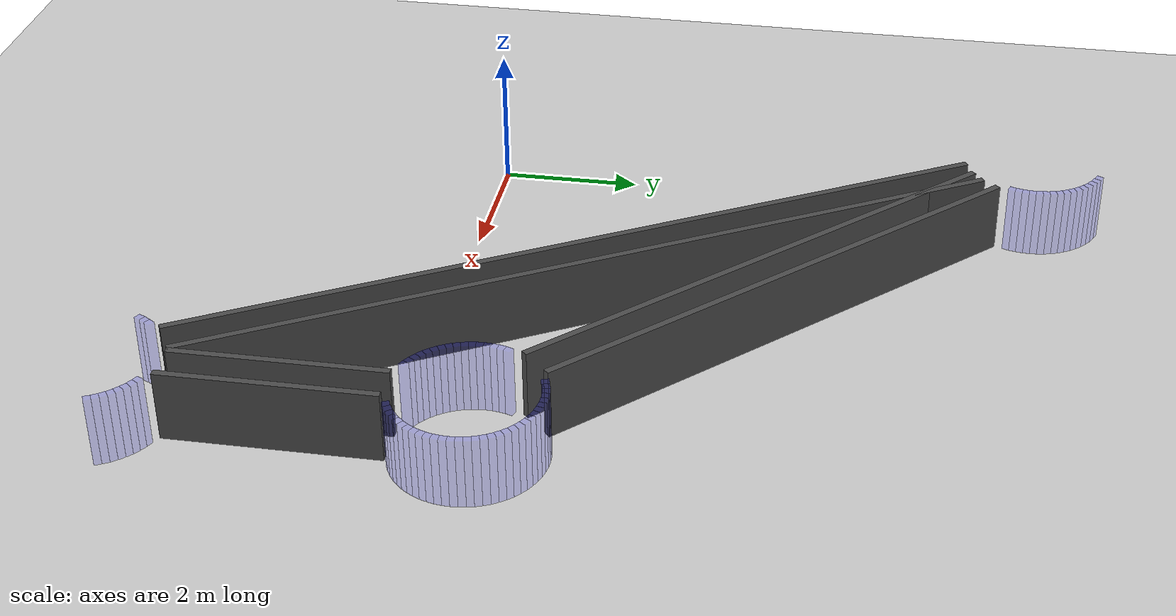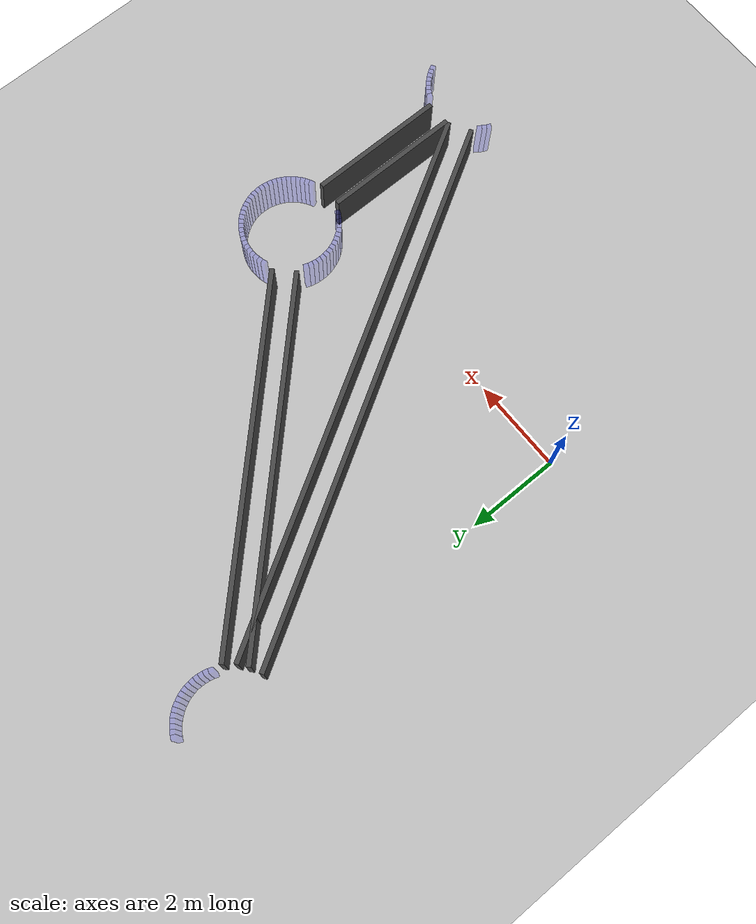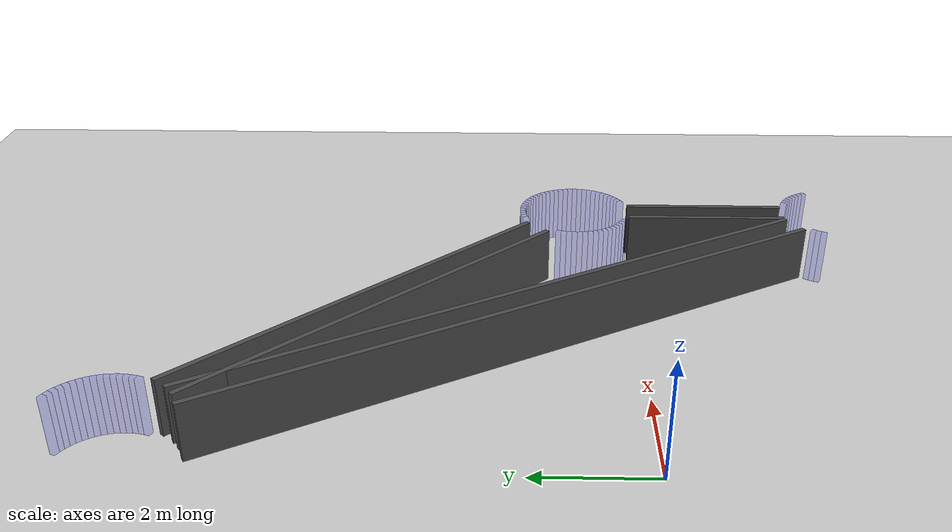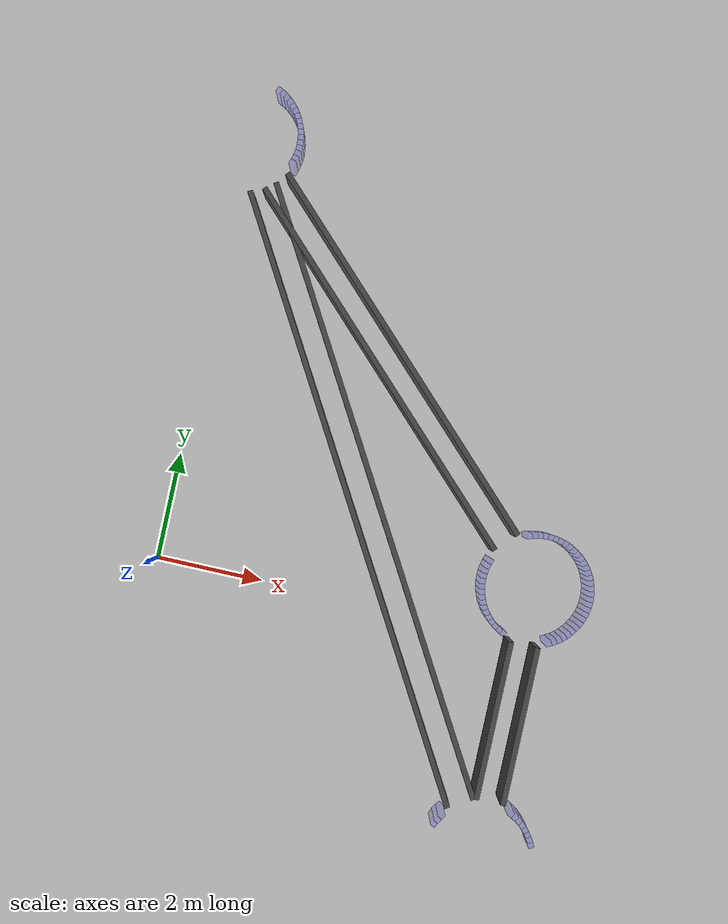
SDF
<sdf version="1.6">
 <world name="graph_routes">
  <include><uri>model://ground_plane</uri></include>
  <include><uri>model://sun</uri></include>
  <model name="node_B_seg36">
   <static>true</static>
   <pose>7.903989 -3.572445 0.500 0 0 2.012582793706</pose>
   <link name="link">
    <visual name="vis">
     <geometry><box><size>0.09817477042468103 0.1 1.0</size></box></geometry>
     <material>
      <ambient>0 0 1 0.05</ambient>
      <diffuse>0 0 1 0.05</diffuse>
      <specular>0.1 0.1 0.1 1</specular>
      <emissive>0 0 0 1</emissive>
     </material>
    </visual>
    <collision name="col"><geometry><box><size>0.09817477042468103 0.1 1.0</size></box></geometry></collision>
   </link>
  </model>
  <model name="node_B_seg37">
   <static>true</static>
   <pose>7.857729 -3.485897 0.500 0 0 2.110757564131</pose>
   <link name="link">
    <visual name="vis">
     <geometry><box><size>0.09817477042468103 0.1 1.0</size></box></geometry>
     <material>
      <ambient>0 0 1 0.05</ambient>
      <diffuse>0 0 1 0.05</diffuse>
      <specular>0.1 0.1 0.1 1</specular>
      <emissive>0 0 0 1</emissive>
     </material>
    </visual>
    <collision name="col"><geometry><box><size>0.09817477042468103 0.1 1.0</size></box></geometry></collision>
   </link>
  </model>
  <model name="node_B_seg38">
   <static>true</static>
   <pose>7.803208 -3.404301 0.500 0 0 2.208932334555</pose>
   <link name="link">
    <visual name="vis">
     <geometry><box><size>0.09817477042468103 0.1 1.0</size></box></geometry>
     <material>
      <ambient>0 0 1 0.05</ambient>
      <diffuse>0 0 1 0.05</diffuse>
      <specular>0.1 0.1 0.1 1</specular>
      <emissive>0 0 0 1</emissive>
     </material>
    </visual>
    <collision name="col"><geometry><box><size>0.09817477042468103 0.1 1.0</size></box></geometry></collision>
   </link>
  </model>
  <model name="node_B_seg39">
   <static>true</static>
   <pose>7.740951 -3.328441 0.500 0 0 2.307107104980</pose>
   <link name="link">
    <visual name="vis">
     <geometry><box><size>0.09817477042468103 0.1 1.0</size></box></geometry>
     <material>
      <ambient>0 0 1 0.05</ambient>
      <diffuse>0 0 1 0.05</diffuse>
      <specular>0.1 0.1 0.1 1</specular>
      <emissive>0 0 0 1</emissive>
     </material>
    </visual>
    <collision name="col"><geometry><box><size>0.09817477042468103 0.1 1.0</size></box></geometry></collision>
   </link>
  </model>
  <model name="node_B_seg40">
   <static>true</static>
   <pose>7.671559 -3.259049 0.500 0 0 2.405281875405</pose>
   <link name="link">
    <visual name="vis">
     <geometry><box><size>0.09817477042468103 0.1 1.0</size></box></geometry>
     <material>
      <ambient>0 0 1 0.05</ambient>
      <diffuse>0 0 1 0.05</diffuse>
      <specular>0.1 0.1 0.1 1</specular>
      <emissive>0 0 0 1</emissive>
     </material>
    </visual>
    <collision name="col"><geometry><box><size>0.09817477042468103 0.1 1.0</size></box></geometry></collision>
   </link>
  </model>
  <model name="node_B_seg41">
   <static>true</static>
   <pose>7.595699 -3.196792 0.500 0 0 2.503456645829</pose>
   <link name="link">
    <visual name="vis">
     <geometry><box><size>0.09817477042468103 0.1 1.0</size></box></geometry>
     <material>
      <ambient>0 0 1 0.05</ambient>
      <diffuse>0 0 1 0.05</diffuse>
      <specular>0.1 0.1 0.1 1</specular>
      <emissive>0 0 0 1</emissive>
     </material>
    </visual>
    <collision name="col"><geometry><box><size>0.09817477042468103 0.1 1.0</size></box></geometry></collision>
   </link>
  </model>
  <model name="node_B_seg42">
   <static>true</static>
   <pose>7.514103 -3.142271 0.500 0 0 2.601631416254</pose>
   <link name="link">
    <visual name="vis">
     <geometry><box><size>0.09817477042468103 0.1 1.0</size></box></geometry>
     <material>
      <ambient>0 0 1 0.05</ambient>
      <diffuse>0 0 1 0.05</diffuse>
      <specular>0.1 0.1 0.1 1</specular>
      <emissive>0 0 0 1</emissive>
     </material>
    </visual>
    <collision name="col"><geometry><box><size>0.09817477042468103 0.1 1.0</size></box></geometry></collision>
   </link>
  </model>
  <model name="node_B_seg43">
   <static>true</static>
   <pose>7.427555 -3.096011 0.500 0 0 2.699806186679</pose>
   <link name="link">
    <visual name="vis">
     <geometry><box><size>0.09817477042468103 0.1 1.0</size></box></geometry>
     <material>
      <ambient>0 0 1 0.05</ambient>
      <diffuse>0 0 1 0.05</diffuse>
      <specular>0.1 0.1 0.1 1</specular>
      <emissive>0 0 0 1</emissive>
     </material>
    </visual>
    <collision name="col"><geometry><box><size>0.09817477042468103 0.1 1.0</size></box></geometry></collision>
   </link>
  </model>
  <model name="node_B_seg57">
   <static>true</static>
   <pose>6.196792 -3.404301 0.500 0 0 4.074252972624</pose>
   <link name="link">
    <visual name="vis">
     <geometry><box><size>0.09817477042468103 0.1 1.0</size></box></geometry>
     <material>
      <ambient>0 0 1 0.05</ambient>
      <diffuse>0 0 1 0.05</diffuse>
      <specular>0.1 0.1 0.1 1</specular>
      <emissive>0 0 0 1</emissive>
     </material>
    </visual>
    <collision name="col"><geometry><box><size>0.09817477042468103 0.1 1.0</size></box></geometry></collision>
   </link>
  </model>
  <model name="node_B_seg58">
   <static>true</static>
   <pose>6.142271 -3.485897 0.500 0 0 4.172427743049</pose>
   <link name="link">
    <visual name="vis">
     <geometry><box><size>0.09817477042468103 0.1 1.0</size></box></geometry>
     <material>
      <ambient>0 0 1 0.05</ambient>
      <diffuse>0 0 1 0.05</diffuse>
      <specular>0.1 0.1 0.1 1</specular>
      <emissive>0 0 0 1</emissive>
     </material>
    </visual>
    <collision name="col"><geometry><box><size>0.09817477042468103 0.1 1.0</size></box></geometry></collision>
   </link>
  </model>
  <model name="node_B_seg59">
   <static>true</static>
   <pose>6.096011 -3.572445 0.500 0 0 4.270602513474</pose>
   <link name="link">
    <visual name="vis">
     <geometry><box><size>0.09817477042468103 0.1 1.0</size></box></geometry>
     <material>
      <ambient>0 0 1 0.05</ambient>
      <diffuse>0 0 1 0.05</diffuse>
      <specular>0.1 0.1 0.1 1</specular>
      <emissive>0 0 0 1</emissive>
     </material>
    </visual>
    <collision name="col"><geometry><box><size>0.09817477042468103 0.1 1.0</size></box></geometry></collision>
   </link>
  </model>
  <model name="node_D_seg0">
   <static>true</static>
   <pose>6.001205 0.950932 0.500 0 0 -1.521708941583</pose>
   <link name="link">
    <visual name="vis">
     <geometry><box><size>0.09817477042468103 0.1 1.0</size></box></geometry>
     <material>
      <ambient>0 0 1 0.05</ambient>
      <diffuse>0 0 1 0.05</diffuse>
      <specular>0.1 0.1 0.1 1</specular>
      <emissive>0 0 0 1</emissive>
     </material>
    </visual>
    <collision name="col"><geometry><box><size>0.09817477042468103 0.1 1.0</size></box></geometry></collision>
   </link>
  </model>
  <model name="node_D_seg1">
   <static>true</static>
   <pose>6.010823 0.853270 0.500 0 0 -1.423534171158</pose>
   <link name="link">
    <visual name="vis">
     <geometry><box><size>0.09817477042468103 0.1 1.0</size></box></geometry>
     <material>
      <ambient>0 0 1 0.05</ambient>
      <diffuse>0 0 1 0.05</diffuse>
      <specular>0.1 0.1 0.1 1</specular>
      <emissive>0 0 0 1</emissive>
     </material>
    </visual>
    <collision name="col"><geometry><box><size>0.09817477042468103 0.1 1.0</size></box></geometry></collision>
   </link>
  </model>
  <model name="node_D_seg2">
   <static>true</static>
   <pose>6.029969 0.757020 0.500 0 0 -1.325359400733</pose>
   <link name="link">
    <visual name="vis">
     <geometry><box><size>0.09817477042468103 0.1 1.0</size></box></geometry>
     <material>
      <ambient>0 0 1 0.05</ambient>
      <diffuse>0 0 1 0.05</diffuse>
      <specular>0.1 0.1 0.1 1</specular>
      <emissive>0 0 0 1</emissive>
     </material>
    </visual>
    <collision name="col"><geometry><box><size>0.09817477042468103 0.1 1.0</size></box></geometry></collision>
   </link>
  </model>
  <model name="node_D_seg3">
   <static>true</static>
   <pose>6.058456 0.663110 0.500 0 0 -1.227184630309</pose>
   <link name="link">
    <visual name="vis">
     <geometry><box><size>0.09817477042468103 0.1 1.0</size></box></geometry>
     <material>
      <ambient>0 0 1 0.05</ambient>
      <diffuse>0 0 1 0.05</diffuse>
      <specular>0.1 0.1 0.1 1</specular>
      <emissive>0 0 0 1</emissive>
     </material>
    </visual>
    <collision name="col"><geometry><box><size>0.09817477042468103 0.1 1.0</size></box></geometry></collision>
   </link>
  </model>
  <model name="node_D_seg4">
   <static>true</static>
   <pose>6.096011 0.572445 0.500 0 0 -1.129009859884</pose>
   <link name="link">
    <visual name="vis">
     <geometry><box><size>0.09817477042468103 0.1 1.0</size></box></geometry>
     <material>
      <ambient>0 0 1 0.05</ambient>
      <diffuse>0 0 1 0.05</diffuse>
      <specular>0.1 0.1 0.1 1</specular>
      <emissive>0 0 0 1</emissive>
     </material>
    </visual>
    <collision name="col"><geometry><box><size>0.09817477042468103 0.1 1.0</size></box></geometry></collision>
   </link>
  </model>
  <model name="node_D_seg5">
   <static>true</static>
   <pose>6.142271 0.485897 0.500 0 0 -1.030835089459</pose>
   <link name="link">
    <visual name="vis">
     <geometry><box><size>0.09817477042468103 0.1 1.0</size></box></geometry>
     <material>
      <ambient>0 0 1 0.05</ambient>
      <diffuse>0 0 1 0.05</diffuse>
      <specular>0.1 0.1 0.1 1</specular>
      <emissive>0 0 0 1</emissive>
     </material>
    </visual>
    <collision name="col"><geometry><box><size>0.09817477042468103 0.1 1.0</size></box></geometry></collision>
   </link>
  </model>
  <model name="node_D_seg6">
   <static>true</static>
   <pose>6.196792 0.404301 0.500 0 0 -0.932660319034</pose>
   <link name="link">
    <visual name="vis">
     <geometry><box><size>0.09817477042468103 0.1 1.0</size></box></geometry>
     <material>
      <ambient>0 0 1 0.05</ambient>
      <diffuse>0 0 1 0.05</diffuse>
      <specular>0.1 0.1 0.1 1</specular>
      <emissive>0 0 0 1</emissive>
     </material>
    </visual>
    <collision name="col"><geometry><box><size>0.09817477042468103 0.1 1.0</size></box></geometry></collision>
   </link>
  </model>
  <model name="node_D_seg7">
   <static>true</static>
   <pose>6.259049 0.328441 0.500 0 0 -0.834485548610</pose>
   <link name="link">
    <visual name="vis">
     <geometry><box><size>0.09817477042468103 0.1 1.0</size></box></geometry>
     <material>
      <ambient>0 0 1 0.05</ambient>
      <diffuse>0 0 1 0.05</diffuse>
      <specular>0.1 0.1 0.1 1</specular>
      <emissive>0 0 0 1</emissive>
     </material>
    </visual>
    <collision name="col"><geometry><box><size>0.09817477042468103 0.1 1.0</size></box></geometry></collision>
   </link>
  </model>
  <model name="node_D_seg8">
   <static>true</static>
   <pose>6.328441 0.259049 0.500 0 0 -0.736310778185</pose>
   <link name="link">
    <visual name="vis">
     <geometry><box><size>0.09817477042468103 0.1 1.0</size></box></geometry>
     <material>
      <ambient>0 0 1 0.05</ambient>
      <diffuse>0 0 1 0.05</diffuse>
      <specular>0.1 0.1 0.1 1</specular>
      <emissive>0 0 0 1</emissive>
     </material>
    </visual>
    <collision name="col"><geometry><box><size>0.09817477042468103 0.1 1.0</size></box></geometry></collision>
   </link>
  </model>
  <model name="node_D_seg9">
   <static>true</static>
   <pose>6.404301 0.196792 0.500 0 0 -0.638136007760</pose>
   <link name="link">
    <visual name="vis">
     <geometry><box><size>0.09817477042468103 0.1 1.0</size></box></geometry>
     <material>
      <ambient>0 0 1 0.05</ambient>
      <diffuse>0 0 1 0.05</diffuse>
      <specular>0.1 0.1 0.1 1</specular>
      <emissive>0 0 0 1</emissive>
     </material>
    </visual>
    <collision name="col"><geometry><box><size>0.09817477042468103 0.1 1.0</size></box></geometry></collision>
   </link>
  </model>
  <model name="node_D_seg10">
   <static>true</static>
   <pose>6.485897 0.142271 0.500 0 0 -0.539961237336</pose>
   <link name="link">
    <visual name="vis">
     <geometry><box><size>0.09817477042468103 0.1 1.0</size></box></geometry>
     <material>
      <ambient>0 0 1 0.05</ambient>
      <diffuse>0 0 1 0.05</diffuse>
      <specular>0.1 0.1 0.1 1</specular>
      <emissive>0 0 0 1</emissive>
     </material>
    </visual>
    <collision name="col"><geometry><box><size>0.09817477042468103 0.1 1.0</size></box></geometry></collision>
   </link>
  </model>
  <model name="node_D_seg11">
   <static>true</static>
   <pose>6.572445 0.096011 0.500 0 0 -0.441786466911</pose>
   <link name="link">
    <visual name="vis">
     <geometry><box><size>0.09817477042468103 0.1 1.0</size></box></geometry>
     <material>
      <ambient>0 0 1 0.05</ambient>
      <diffuse>0 0 1 0.05</diffuse>
      <specular>0.1 0.1 0.1 1</specular>
      <emissive>0 0 0 1</emissive>
     </material>
    </visual>
    <collision name="col"><geometry><box><size>0.09817477042468103 0.1 1.0</size></box></geometry></collision>
   </link>
  </model>
  <model name="node_D_seg20">
   <static>true</static>
   <pose>7.427555 0.096011 0.500 0 0 0.441786466911</pose>
   <link name="link">
    <visual name="vis">
     <geometry><box><size>0.09817477042468103 0.1 1.0</size></box></geometry>
     <material>
      <ambient>0 0 1 0.05</ambient>
      <diffuse>0 0 1 0.05</diffuse>
      <specular>0.1 0.1 0.1 1</specular>
      <emissive>0 0 0 1</emissive>
     </material>
    </visual>
    <collision name="col"><geometry><box><size>0.09817477042468103 0.1 1.0</size></box></geometry></collision>
   </link>
  </model>
  <model name="node_D_seg21">
   <static>true</static>
   <pose>7.514103 0.142271 0.500 0 0 0.539961237336</pose>
   <link name="link">
    <visual name="vis">
     <geometry><box><size>0.09817477042468103 0.1 1.0</size></box></geometry>
     <material>
      <ambient>0 0 1 0.05</ambient>
      <diffuse>0 0 1 0.05</diffuse>
      <specular>0.1 0.1 0.1 1</specular>
      <emissive>0 0 0 1</emissive>
     </material>
    </visual>
    <collision name="col"><geometry><box><size>0.09817477042468103 0.1 1.0</size></box></geometry></collision>
   </link>
  </model>
  <model name="node_D_seg22">
   <static>true</static>
   <pose>7.595699 0.196792 0.500 0 0 0.638136007760</pose>
   <link name="link">
    <visual name="vis">
     <geometry><box><size>0.09817477042468103 0.1 1.0</size></box></geometry>
     <material>
      <ambient>0 0 1 0.05</ambient>
      <diffuse>0 0 1 0.05</diffuse>
      <specular>0.1 0.1 0.1 1</specular>
      <emissive>0 0 0 1</emissive>
     </material>
    </visual>
    <collision name="col"><geometry><box><size>0.09817477042468103 0.1 1.0</size></box></geometry></collision>
   </link>
  </model>
  <model name="node_D_seg23">
   <static>true</static>
   <pose>7.671559 0.259049 0.500 0 0 0.736310778185</pose>
   <link name="link">
    <visual name="vis">
     <geometry><box><size>0.09817477042468103 0.1 1.0</size></box></geometry>
     <material>
      <ambient>0 0 1 0.05</ambient>
      <diffuse>0 0 1 0.05</diffuse>
      <specular>0.1 0.1 0.1 1</specular>
      <emissive>0 0 0 1</emissive>
     </material>
    </visual>
    <collision name="col"><geometry><box><size>0.09817477042468103 0.1 1.0</size></box></geometry></collision>
   </link>
  </model>
  <model name="node_D_seg24">
   <static>true</static>
   <pose>7.740951 0.328441 0.500 0 0 0.834485548610</pose>
   <link name="link">
    <visual name="vis">
     <geometry><box><size>0.09817477042468103 0.1 1.0</size></box></geometry>
     <material>
      <ambient>0 0 1 0.05</ambient>
      <diffuse>0 0 1 0.05</diffuse>
      <specular>0.1 0.1 0.1 1</specular>
      <emissive>0 0 0 1</emissive>
     </material>
    </visual>
    <collision name="col"><geometry><box><size>0.09817477042468103 0.1 1.0</size></box></geometry></collision>
   </link>
  </model>
  <model name="node_D_seg25">
   <static>true</static>
   <pose>7.803208 0.404301 0.500 0 0 0.932660319034</pose>
   <link name="link">
    <visual name="vis">
     <geometry><box><size>0.09817477042468103 0.1 1.0</size></box></geometry>
     <material>
      <ambient>0 0 1 0.05</ambient>
      <diffuse>0 0 1 0.05</diffuse>
      <specular>0.1 0.1 0.1 1</specular>
      <emissive>0 0 0 1</emissive>
     </material>
    </visual>
    <collision name="col"><geometry><box><size>0.09817477042468103 0.1 1.0</size></box></geometry></collision>
   </link>
  </model>
  <model name="node_D_seg26">
   <static>true</static>
   <pose>7.857729 0.485897 0.500 0 0 1.030835089459</pose>
   <link name="link">
    <visual name="vis">
     <geometry><box><size>0.09817477042468103 0.1 1.0</size></box></geometry>
     <material>
      <ambient>0 0 1 0.05</ambient>
      <diffuse>0 0 1 0.05</diffuse>
      <specular>0.1 0.1 0.1 1</specular>
      <emissive>0 0 0 1</emissive>
     </material>
    </visual>
    <collision name="col"><geometry><box><size>0.09817477042468103 0.1 1.0</size></box></geometry></collision>
   </link>
  </model>
  <model name="node_D_seg27">
   <static>true</static>
   <pose>7.903989 0.572445 0.500 0 0 1.129009859884</pose>
   <link name="link">
    <visual name="vis">
     <geometry><box><size>0.09817477042468103 0.1 1.0</size></box></geometry>
     <material>
      <ambient>0 0 1 0.05</ambient>
      <diffuse>0 0 1 0.05</diffuse>
      <specular>0.1 0.1 0.1 1</specular>
      <emissive>0 0 0 1</emissive>
     </material>
    </visual>
    <collision name="col"><geometry><box><size>0.09817477042468103 0.1 1.0</size></box></geometry></collision>
   </link>
  </model>
  <model name="node_D_seg28">
   <static>true</static>
   <pose>7.941544 0.663110 0.500 0 0 1.227184630309</pose>
   <link name="link">
    <visual name="vis">
     <geometry><box><size>0.09817477042468103 0.1 1.0</size></box></geometry>
     <material>
      <ambient>0 0 1 0.05</ambient>
      <diffuse>0 0 1 0.05</diffuse>
      <specular>0.1 0.1 0.1 1</specular>
      <emissive>0 0 0 1</emissive>
     </material>
    </visual>
    <collision name="col"><geometry><box><size>0.09817477042468103 0.1 1.0</size></box></geometry></collision>
   </link>
  </model>
  <model name="node_D_seg29">
   <static>true</static>
   <pose>7.970031 0.757020 0.500 0 0 1.325359400733</pose>
   <link name="link">
    <visual name="vis">
     <geometry><box><size>0.09817477042468103 0.1 1.0</size></box></geometry>
     <material>
      <ambient>0 0 1 0.05</ambient>
      <diffuse>0 0 1 0.05</diffuse>
      <specular>0.1 0.1 0.1 1</specular>
      <emissive>0 0 0 1</emissive>
     </material>
    </visual>
    <collision name="col"><geometry><box><size>0.09817477042468103 0.1 1.0</size></box></geometry></collision>
   </link>
  </model>
  <model name="node_D_seg30">
   <static>true</static>
   <pose>7.989177 0.853270 0.500 0 0 1.423534171158</pose>
   <link name="link">
    <visual name="vis">
     <geometry><box><size>0.09817477042468103 0.1 1.0</size></box></geometry>
     <material>
      <ambient>0 0 1 0.05</ambient>
      <diffuse>0 0 1 0.05</diffuse>
      <specular>0.1 0.1 0.1 1</specular>
      <emissive>0 0 0 1</emissive>
     </material>
    </visual>
    <collision name="col"><geometry><box><size>0.09817477042468103 0.1 1.0</size></box></geometry></collision>
   </link>
  </model>
  <model name="node_D_seg31">
   <static>true</static>
   <pose>7.998795 0.950932 0.500 0 0 1.521708941583</pose>
   <link name="link">
    <visual name="vis">
     <geometry><box><size>0.09817477042468103 0.1 1.0</size></box></geometry>
     <material>
      <ambient>0 0 1 0.05</ambient>
      <diffuse>0 0 1 0.05</diffuse>
      <specular>0.1 0.1 0.1 1</specular>
      <emissive>0 0 0 1</emissive>
     </material>
    </visual>
    <collision name="col"><geometry><box><size>0.09817477042468103 0.1 1.0</size></box></geometry></collision>
   </link>
  </model>
  <model name="node_D_seg32">
   <static>true</static>
   <pose>7.998795 1.049068 0.500 0 0 1.619883712007</pose>
   <link name="link">
    <visual name="vis">
     <geometry><box><size>0.09817477042468103 0.1 1.0</size></box></geometry>
     <material>
      <ambient>0 0 1 0.05</ambient>
      <diffuse>0 0 1 0.05</diffuse>
      <specular>0.1 0.1 0.1 1</specular>
      <emissive>0 0 0 1</emissive>
     </material>
    </visual>
    <collision name="col"><geometry><box><size>0.09817477042468103 0.1 1.0</size></box></geometry></collision>
   </link>
  </model>
  <model name="node_D_seg33">
   <static>true</static>
   <pose>7.989177 1.146730 0.500 0 0 1.718058482432</pose>
   <link name="link">
    <visual name="vis">
     <geometry><box><size>0.09817477042468103 0.1 1.0</size></box></geometry>
     <material>
      <ambient>0 0 1 0.05</ambient>
      <diffuse>0 0 1 0.05</diffuse>
      <specular>0.1 0.1 0.1 1</specular>
      <emissive>0 0 0 1</emissive>
     </material>
    </visual>
    <collision name="col"><geometry><box><size>0.09817477042468103 0.1 1.0</size></box></geometry></collision>
   </link>
  </model>
  <model name="node_D_seg34">
   <static>true</static>
   <pose>7.970031 1.242980 0.500 0 0 1.816233252857</pose>
   <link name="link">
    <visual name="vis">
     <geometry><box><size>0.09817477042468103 0.1 1.0</size></box></geometry>
     <material>
      <ambient>0 0 1 0.05</ambient>
      <diffuse>0 0 1 0.05</diffuse>
      <specular>0.1 0.1 0.1 1</specular>
      <emissive>0 0 0 1</emissive>
     </material>
    </visual>
    <collision name="col"><geometry><box><size>0.09817477042468103 0.1 1.0</size></box></geometry></collision>
   </link>
  </model>
  <model name="node_D_seg35">
   <static>true</static>
   <pose>7.941544 1.336890 0.500 0 0 1.914408023281</pose>
   <link name="link">
    <visual name="vis">
     <geometry><box><size>0.09817477042468103 0.1 1.0</size></box></geometry>
     <material>
      <ambient>0 0 1 0.05</ambient>
      <diffuse>0 0 1 0.05</diffuse>
      <specular>0.1 0.1 0.1 1</specular>
      <emissive>0 0 0 1</emissive>
     </material>
    </visual>
    <collision name="col"><geometry><box><size>0.09817477042468103 0.1 1.0</size></box></geometry></collision>
   </link>
  </model>
  <model name="node_D_seg36">
   <static>true</static>
   <pose>7.903989 1.427555 0.500 0 0 2.012582793706</pose>
   <link name="link">
    <visual name="vis">
     <geometry><box><size>0.09817477042468103 0.1 1.0</size></box></geometry>
     <material>
      <ambient>0 0 1 0.05</ambient>
      <diffuse>0 0 1 0.05</diffuse>
      <specular>0.1 0.1 0.1 1</specular>
      <emissive>0 0 0 1</emissive>
     </material>
    </visual>
    <collision name="col"><geometry><box><size>0.09817477042468103 0.1 1.0</size></box></geometry></collision>
   </link>
  </model>
  <model name="node_D_seg37">
   <static>true</static>
   <pose>7.857729 1.514103 0.500 0 0 2.110757564131</pose>
   <link name="link">
    <visual name="vis">
     <geometry><box><size>0.09817477042468103 0.1 1.0</size></box></geometry>
     <material>
      <ambient>0 0 1 0.05</ambient>
      <diffuse>0 0 1 0.05</diffuse>
      <specular>0.1 0.1 0.1 1</specular>
      <emissive>0 0 0 1</emissive>
     </material>
    </visual>
    <collision name="col"><geometry><box><size>0.09817477042468103 0.1 1.0</size></box></geometry></collision>
   </link>
  </model>
  <model name="node_D_seg38">
   <static>true</static>
   <pose>7.803208 1.595699 0.500 0 0 2.208932334555</pose>
   <link name="link">
    <visual name="vis">
     <geometry><box><size>0.09817477042468103 0.1 1.0</size></box></geometry>
     <material>
      <ambient>0 0 1 0.05</ambient>
      <diffuse>0 0 1 0.05</diffuse>
      <specular>0.1 0.1 0.1 1</specular>
      <emissive>0 0 0 1</emissive>
     </material>
    </visual>
    <collision name="col"><geometry><box><size>0.09817477042468103 0.1 1.0</size></box></geometry></collision>
   </link>
  </model>
  <model name="node_D_seg39">
   <static>true</static>
   <pose>7.740951 1.671559 0.500 0 0 2.307107104980</pose>
   <link name="link">
    <visual name="vis">
     <geometry><box><size>0.09817477042468103 0.1 1.0</size></box></geometry>
     <material>
      <ambient>0 0 1 0.05</ambient>
      <diffuse>0 0 1 0.05</diffuse>
      <specular>0.1 0.1 0.1 1</specular>
      <emissive>0 0 0 1</emissive>
     </material>
    </visual>
    <collision name="col"><geometry><box><size>0.09817477042468103 0.1 1.0</size></box></geometry></collision>
   </link>
  </model>
  <model name="node_D_seg40">
   <static>true</static>
   <pose>7.671559 1.740951 0.500 0 0 2.405281875405</pose>
   <link name="link">
    <visual name="vis">
     <geometry><box><size>0.09817477042468103 0.1 1.0</size></box></geometry>
     <material>
      <ambient>0 0 1 0.05</ambient>
      <diffuse>0 0 1 0.05</diffuse>
      <specular>0.1 0.1 0.1 1</specular>
      <emissive>0 0 0 1</emissive>
     </material>
    </visual>
    <collision name="col"><geometry><box><size>0.09817477042468103 0.1 1.0</size></box></geometry></collision>
   </link>
  </model>
  <model name="node_D_seg41">
   <static>true</static>
   <pose>7.595699 1.803208 0.500 0 0 2.503456645829</pose>
   <link name="link">
    <visual name="vis">
     <geometry><box><size>0.09817477042468103 0.1 1.0</size></box></geometry>
     <material>
      <ambient>0 0 1 0.05</ambient>
      <diffuse>0 0 1 0.05</diffuse>
      <specular>0.1 0.1 0.1 1</specular>
      <emissive>0 0 0 1</emissive>
     </material>
    </visual>
    <collision name="col"><geometry><box><size>0.09817477042468103 0.1 1.0</size></box></geometry></collision>
   </link>
  </model>
  <model name="node_D_seg42">
   <static>true</static>
   <pose>7.514103 1.857729 0.500 0 0 2.601631416254</pose>
   <link name="link">
    <visual name="vis">
     <geometry><box><size>0.09817477042468103 0.1 1.0</size></box></geometry>
     <material>
      <ambient>0 0 1 0.05</ambient>
      <diffuse>0 0 1 0.05</diffuse>
      <specular>0.1 0.1 0.1 1</specular>
      <emissive>0 0 0 1</emissive>
     </material>
    </visual>
    <collision name="col"><geometry><box><size>0.09817477042468103 0.1 1.0</size></box></geometry></collision>
   </link>
  </model>
  <model name="node_D_seg43">
   <static>true</static>
   <pose>7.427555 1.903989 0.500 0 0 2.699806186679</pose>
   <link name="link">
    <visual name="vis">
     <geometry><box><size>0.09817477042468103 0.1 1.0</size></box></geometry>
     <material>
      <ambient>0 0 1 0.05</ambient>
      <diffuse>0 0 1 0.05</diffuse>
      <specular>0.1 0.1 0.1 1</specular>
      <emissive>0 0 0 1</emissive>
     </material>
    </visual>
    <collision name="col"><geometry><box><size>0.09817477042468103 0.1 1.0</size></box></geometry></collision>
   </link>
  </model>
  <model name="node_D_seg44">
   <static>true</static>
   <pose>7.336890 1.941544 0.500 0 0 2.797980957103</pose>
   <link name="link">
    <visual name="vis">
     <geometry><box><size>0.09817477042468103 0.1 1.0</size></box></geometry>
     <material>
      <ambient>0 0 1 0.05</ambient>
      <diffuse>0 0 1 0.05</diffuse>
      <specular>0.1 0.1 0.1 1</specular>
      <emissive>0 0 0 1</emissive>
     </material>
    </visual>
    <collision name="col"><geometry><box><size>0.09817477042468103 0.1 1.0</size></box></geometry></collision>
   </link>
  </model>
  <model name="node_D_seg45">
   <static>true</static>
   <pose>7.242980 1.970031 0.500 0 0 2.896155727528</pose>
   <link name="link">
    <visual name="vis">
     <geometry><box><size>0.09817477042468103 0.1 1.0</size></box></geometry>
     <material>
      <ambient>0 0 1 0.05</ambient>
      <diffuse>0 0 1 0.05</diffuse>
      <specular>0.1 0.1 0.1 1</specular>
      <emissive>0 0 0 1</emissive>
     </material>
    </visual>
    <collision name="col"><geometry><box><size>0.09817477042468103 0.1 1.0</size></box></geometry></collision>
   </link>
  </model>
  <model name="node_D_seg46">
   <static>true</static>
   <pose>7.146730 1.989177 0.500 0 0 2.994330497953</pose>
   <link name="link">
    <visual name="vis">
     <geometry><box><size>0.09817477042468103 0.1 1.0</size></box></geometry>
     <material>
      <ambient>0 0 1 0.05</ambient>
      <diffuse>0 0 1 0.05</diffuse>
      <specular>0.1 0.1 0.1 1</specular>
      <emissive>0 0 0 1</emissive>
     </material>
    </visual>
    <collision name="col"><geometry><box><size>0.09817477042468103 0.1 1.0</size></box></geometry></collision>
   </link>
  </model>
  <model name="node_D_seg47">
   <static>true</static>
   <pose>7.049068 1.998795 0.500 0 0 3.092505268377</pose>
   <link name="link">
    <visual name="vis">
     <geometry><box><size>0.09817477042468103 0.1 1.0</size></box></geometry>
     <material>
      <ambient>0 0 1 0.05</ambient>
      <diffuse>0 0 1 0.05</diffuse>
      <specular>0.1 0.1 0.1 1</specular>
      <emissive>0 0 0 1</emissive>
     </material>
    </visual>
    <collision name="col"><geometry><box><size>0.09817477042468103 0.1 1.0</size></box></geometry></collision>
   </link>
  </model>
  <model name="node_D_seg48">
   <static>true</static>
   <pose>6.950932 1.998795 0.500 0 0 3.190680038802</pose>
   <link name="link">
    <visual name="vis">
     <geometry><box><size>0.09817477042468103 0.1 1.0</size></box></geometry>
     <material>
      <ambient>0 0 1 0.05</ambient>
      <diffuse>0 0 1 0.05</diffuse>
      <specular>0.1 0.1 0.1 1</specular>
      <emissive>0 0 0 1</emissive>
     </material>
    </visual>
    <collision name="col"><geometry><box><size>0.09817477042468103 0.1 1.0</size></box></geometry></collision>
   </link>
  </model>
  <model name="node_D_seg49">
   <static>true</static>
   <pose>6.853270 1.989177 0.500 0 0 3.288854809227</pose>
   <link name="link">
    <visual name="vis">
     <geometry><box><size>0.09817477042468103 0.1 1.0</size></box></geometry>
     <material>
      <ambient>0 0 1 0.05</ambient>
      <diffuse>0 0 1 0.05</diffuse>
      <specular>0.1 0.1 0.1 1</specular>
      <emissive>0 0 0 1</emissive>
     </material>
    </visual>
    <collision name="col"><geometry><box><size>0.09817477042468103 0.1 1.0</size></box></geometry></collision>
   </link>
  </model>
  <model name="node_D_seg50">
   <static>true</static>
   <pose>6.757020 1.970031 0.500 0 0 3.387029579651</pose>
   <link name="link">
    <visual name="vis">
     <geometry><box><size>0.09817477042468103 0.1 1.0</size></box></geometry>
     <material>
      <ambient>0 0 1 0.05</ambient>
      <diffuse>0 0 1 0.05</diffuse>
      <specular>0.1 0.1 0.1 1</specular>
      <emissive>0 0 0 1</emissive>
     </material>
    </visual>
    <collision name="col"><geometry><box><size>0.09817477042468103 0.1 1.0</size></box></geometry></collision>
   </link>
  </model>
  <model name="node_D_seg51">
   <static>true</static>
   <pose>6.663110 1.941544 0.500 0 0 3.485204350076</pose>
   <link name="link">
    <visual name="vis">
     <geometry><box><size>0.09817477042468103 0.1 1.0</size></box></geometry>
     <material>
      <ambient>0 0 1 0.05</ambient>
      <diffuse>0 0 1 0.05</diffuse>
      <specular>0.1 0.1 0.1 1</specular>
      <emissive>0 0 0 1</emissive>
     </material>
    </visual>
    <collision name="col"><geometry><box><size>0.09817477042468103 0.1 1.0</size></box></geometry></collision>
   </link>
  </model>
  <model name="node_D_seg60">
   <static>true</static>
   <pose>6.058456 1.336890 0.500 0 0 4.368777283898</pose>
   <link name="link">
    <visual name="vis">
     <geometry><box><size>0.09817477042468103 0.1 1.0</size></box></geometry>
     <material>
      <ambient>0 0 1 0.05</ambient>
      <diffuse>0 0 1 0.05</diffuse>
      <specular>0.1 0.1 0.1 1</specular>
      <emissive>0 0 0 1</emissive>
     </material>
    </visual>
    <collision name="col"><geometry><box><size>0.09817477042468103 0.1 1.0</size></box></geometry></collision>
   </link>
  </model>
  <model name="node_D_seg61">
   <static>true</static>
   <pose>6.029969 1.242980 0.500 0 0 4.466952054323</pose>
   <link name="link">
    <visual name="vis">
     <geometry><box><size>0.09817477042468103 0.1 1.0</size></box></geometry>
     <material>
      <ambient>0 0 1 0.05</ambient>
      <diffuse>0 0 1 0.05</diffuse>
      <specular>0.1 0.1 0.1 1</specular>
      <emissive>0 0 0 1</emissive>
     </material>
    </visual>
    <collision name="col"><geometry><box><size>0.09817477042468103 0.1 1.0</size></box></geometry></collision>
   </link>
  </model>
  <model name="node_D_seg62">
   <static>true</static>
   <pose>6.010823 1.146730 0.500 0 0 4.565126824748</pose>
   <link name="link">
    <visual name="vis">
     <geometry><box><size>0.09817477042468103 0.1 1.0</size></box></geometry>
     <material>
      <ambient>0 0 1 0.05</ambient>
      <diffuse>0 0 1 0.05</diffuse>
      <specular>0.1 0.1 0.1 1</specular>
      <emissive>0 0 0 1</emissive>
     </material>
    </visual>
    <collision name="col"><geometry><box><size>0.09817477042468103 0.1 1.0</size></box></geometry></collision>
   </link>
  </model>
  <model name="node_D_seg63">
   <static>true</static>
   <pose>6.001205 1.049068 0.500 0 0 4.663301595172</pose>
   <link name="link">
    <visual name="vis">
     <geometry><box><size>0.09817477042468103 0.1 1.0</size></box></geometry>
     <material>
      <ambient>0 0 1 0.05</ambient>
      <diffuse>0 0 1 0.05</diffuse>
      <specular>0.1 0.1 0.1 1</specular>
      <emissive>0 0 0 1</emissive>
     </material>
    </visual>
    <collision name="col"><geometry><box><size>0.09817477042468103 0.1 1.0</size></box></geometry></collision>
   </link>
  </model>
  <model name="node_G_seg28">
   <static>true</static>
   <pose>0.941544 7.663110 0.500 0 0 1.227184630309</pose>
   <link name="link">
    <visual name="vis">
     <geometry><box><size>0.09817477042468103 0.1 1.0</size></box></geometry>
     <material>
      <ambient>0 0 1 0.05</ambient>
      <diffuse>0 0 1 0.05</diffuse>
      <specular>0.1 0.1 0.1 1</specular>
      <emissive>0 0 0 1</emissive>
     </material>
    </visual>
    <collision name="col"><geometry><box><size>0.09817477042468103 0.1 1.0</size></box></geometry></collision>
   </link>
  </model>
  <model name="node_G_seg29">
   <static>true</static>
   <pose>0.970031 7.757020 0.500 0 0 1.325359400733</pose>
   <link name="link">
    <visual name="vis">
     <geometry><box><size>0.09817477042468103 0.1 1.0</size></box></geometry>
     <material>
      <ambient>0 0 1 0.05</ambient>
      <diffuse>0 0 1 0.05</diffuse>
      <specular>0.1 0.1 0.1 1</specular>
      <emissive>0 0 0 1</emissive>
     </material>
    </visual>
    <collision name="col"><geometry><box><size>0.09817477042468103 0.1 1.0</size></box></geometry></collision>
   </link>
  </model>
  <model name="node_G_seg30">
   <static>true</static>
   <pose>0.989177 7.853270 0.500 0 0 1.423534171158</pose>
   <link name="link">
    <visual name="vis">
     <geometry><box><size>0.09817477042468103 0.1 1.0</size></box></geometry>
     <material>
      <ambient>0 0 1 0.05</ambient>
      <diffuse>0 0 1 0.05</diffuse>
      <specular>0.1 0.1 0.1 1</specular>
      <emissive>0 0 0 1</emissive>
     </material>
    </visual>
    <collision name="col"><geometry><box><size>0.09817477042468103 0.1 1.0</size></box></geometry></collision>
   </link>
  </model>
  <model name="node_G_seg31">
   <static>true</static>
   <pose>0.998795 7.950932 0.500 0 0 1.521708941583</pose>
   <link name="link">
    <visual name="vis">
     <geometry><box><size>0.09817477042468103 0.1 1.0</size></box></geometry>
     <material>
      <ambient>0 0 1 0.05</ambient>
      <diffuse>0 0 1 0.05</diffuse>
      <specular>0.1 0.1 0.1 1</specular>
      <emissive>0 0 0 1</emissive>
     </material>
    </visual>
    <collision name="col"><geometry><box><size>0.09817477042468103 0.1 1.0</size></box></geometry></collision>
   </link>
  </model>
  <model name="node_G_seg32">
   <static>true</static>
   <pose>0.998795 8.049068 0.500 0 0 1.619883712007</pose>
   <link name="link">
    <visual name="vis">
     <geometry><box><size>0.09817477042468103 0.1 1.0</size></box></geometry>
     <material>
      <ambient>0 0 1 0.05</ambient>
      <diffuse>0 0 1 0.05</diffuse>
      <specular>0.1 0.1 0.1 1</specular>
      <emissive>0 0 0 1</emissive>
     </material>
    </visual>
    <collision name="col"><geometry><box><size>0.09817477042468103 0.1 1.0</size></box></geometry></collision>
   </link>
  </model>
  <model name="node_G_seg33">
   <static>true</static>
   <pose>0.989177 8.146730 0.500 0 0 1.718058482432</pose>
   <link name="link">
    <visual name="vis">
     <geometry><box><size>0.09817477042468103 0.1 1.0</size></box></geometry>
     <material>
      <ambient>0 0 1 0.05</ambient>
      <diffuse>0 0 1 0.05</diffuse>
      <specular>0.1 0.1 0.1 1</specular>
      <emissive>0 0 0 1</emissive>
     </material>
    </visual>
    <collision name="col"><geometry><box><size>0.09817477042468103 0.1 1.0</size></box></geometry></collision>
   </link>
  </model>
  <model name="node_G_seg34">
   <static>true</static>
   <pose>0.970031 8.242980 0.500 0 0 1.816233252857</pose>
   <link name="link">
    <visual name="vis">
     <geometry><box><size>0.09817477042468103 0.1 1.0</size></box></geometry>
     <material>
      <ambient>0 0 1 0.05</ambient>
      <diffuse>0 0 1 0.05</diffuse>
      <specular>0.1 0.1 0.1 1</specular>
      <emissive>0 0 0 1</emissive>
     </material>
    </visual>
    <collision name="col"><geometry><box><size>0.09817477042468103 0.1 1.0</size></box></geometry></collision>
   </link>
  </model>
  <model name="node_G_seg35">
   <static>true</static>
   <pose>0.941544 8.336890 0.500 0 0 1.914408023281</pose>
   <link name="link">
    <visual name="vis">
     <geometry><box><size>0.09817477042468103 0.1 1.0</size></box></geometry>
     <material>
      <ambient>0 0 1 0.05</ambient>
      <diffuse>0 0 1 0.05</diffuse>
      <specular>0.1 0.1 0.1 1</specular>
      <emissive>0 0 0 1</emissive>
     </material>
    </visual>
    <collision name="col"><geometry><box><size>0.09817477042468103 0.1 1.0</size></box></geometry></collision>
   </link>
  </model>
  <model name="node_G_seg36">
   <static>true</static>
   <pose>0.903989 8.427555 0.500 0 0 2.012582793706</pose>
   <link name="link">
    <visual name="vis">
     <geometry><box><size>0.09817477042468103 0.1 1.0</size></box></geometry>
     <material>
      <ambient>0 0 1 0.05</ambient>
      <diffuse>0 0 1 0.05</diffuse>
      <specular>0.1 0.1 0.1 1</specular>
      <emissive>0 0 0 1</emissive>
     </material>
    </visual>
    <collision name="col"><geometry><box><size>0.09817477042468103 0.1 1.0</size></box></geometry></collision>
   </link>
  </model>
  <model name="node_G_seg37">
   <static>true</static>
   <pose>0.857729 8.514103 0.500 0 0 2.110757564131</pose>
   <link name="link">
    <visual name="vis">
     <geometry><box><size>0.09817477042468103 0.1 1.0</size></box></geometry>
     <material>
      <ambient>0 0 1 0.05</ambient>
      <diffuse>0 0 1 0.05</diffuse>
      <specular>0.1 0.1 0.1 1</specular>
      <emissive>0 0 0 1</emissive>
     </material>
    </visual>
    <collision name="col"><geometry><box><size>0.09817477042468103 0.1 1.0</size></box></geometry></collision>
   </link>
  </model>
  <model name="node_G_seg38">
   <static>true</static>
   <pose>0.803208 8.595699 0.500 0 0 2.208932334555</pose>
   <link name="link">
    <visual name="vis">
     <geometry><box><size>0.09817477042468103 0.1 1.0</size></box></geometry>
     <material>
      <ambient>0 0 1 0.05</ambient>
      <diffuse>0 0 1 0.05</diffuse>
      <specular>0.1 0.1 0.1 1</specular>
      <emissive>0 0 0 1</emissive>
     </material>
    </visual>
    <collision name="col"><geometry><box><size>0.09817477042468103 0.1 1.0</size></box></geometry></collision>
   </link>
  </model>
  <model name="node_G_seg39">
   <static>true</static>
   <pose>0.740951 8.671559 0.500 0 0 2.307107104980</pose>
   <link name="link">
    <visual name="vis">
     <geometry><box><size>0.09817477042468103 0.1 1.0</size></box></geometry>
     <material>
      <ambient>0 0 1 0.05</ambient>
      <diffuse>0 0 1 0.05</diffuse>
      <specular>0.1 0.1 0.1 1</specular>
      <emissive>0 0 0 1</emissive>
     </material>
    </visual>
    <collision name="col"><geometry><box><size>0.09817477042468103 0.1 1.0</size></box></geometry></collision>
   </link>
  </model>
  <model name="node_G_seg40">
   <static>true</static>
   <pose>0.671559 8.740951 0.500 0 0 2.405281875405</pose>
   <link name="link">
    <visual name="vis">
     <geometry><box><size>0.09817477042468103 0.1 1.0</size></box></geometry>
     <material>
      <ambient>0 0 1 0.05</ambient>
      <diffuse>0 0 1 0.05</diffuse>
      <specular>0.1 0.1 0.1 1</specular>
      <emissive>0 0 0 1</emissive>
     </material>
    </visual>
    <collision name="col"><geometry><box><size>0.09817477042468103 0.1 1.0</size></box></geometry></collision>
   </link>
  </model>
  <model name="node_G_seg41">
   <static>true</static>
   <pose>0.595699 8.803208 0.500 0 0 2.503456645829</pose>
   <link name="link">
    <visual name="vis">
     <geometry><box><size>0.09817477042468103 0.1 1.0</size></box></geometry>
     <material>
      <ambient>0 0 1 0.05</ambient>
      <diffuse>0 0 1 0.05</diffuse>
      <specular>0.1 0.1 0.1 1</specular>
      <emissive>0 0 0 1</emissive>
     </material>
    </visual>
    <collision name="col"><geometry><box><size>0.09817477042468103 0.1 1.0</size></box></geometry></collision>
   </link>
  </model>
  <model name="node_G_seg42">
   <static>true</static>
   <pose>0.514103 8.857729 0.500 0 0 2.601631416254</pose>
   <link name="link">
    <visual name="vis">
     <geometry><box><size>0.09817477042468103 0.1 1.0</size></box></geometry>
     <material>
      <ambient>0 0 1 0.05</ambient>
      <diffuse>0 0 1 0.05</diffuse>
      <specular>0.1 0.1 0.1 1</specular>
      <emissive>0 0 0 1</emissive>
     </material>
    </visual>
    <collision name="col"><geometry><box><size>0.09817477042468103 0.1 1.0</size></box></geometry></collision>
   </link>
  </model>
  <model name="node_G_seg43">
   <static>true</static>
   <pose>0.427555 8.903989 0.500 0 0 2.699806186679</pose>
   <link name="link">
    <visual name="vis">
     <geometry><box><size>0.09817477042468103 0.1 1.0</size></box></geometry>
     <material>
      <ambient>0 0 1 0.05</ambient>
      <diffuse>0 0 1 0.05</diffuse>
      <specular>0.1 0.1 0.1 1</specular>
      <emissive>0 0 0 1</emissive>
     </material>
    </visual>
    <collision name="col"><geometry><box><size>0.09817477042468103 0.1 1.0</size></box></geometry></collision>
   </link>
  </model>
  <model name="edge4_L">
   <static>true</static>
   <pose>6.750000 -1.500000 0.500 0 0 1.570796326795</pose>
   <link name="link">
    <visual name="vis">
     <geometry><box><size>2.95 0.1 1.0</size></box></geometry>
     <material>
      <script><uri>file://media/materials/scripts/gazebo.material</uri><name>Gazebo/DarkGrey</name></script>
     </material>
    </visual>
    <collision name="col"><geometry><box><size>2.95 0.1 1.0</size></box></geometry></collision>
   </link>
  </model>
  <model name="edge4_R">
   <static>true</static>
   <pose>7.250000 -1.500000 0.500 0 0 1.570796326795</pose>
   <link name="link">
    <visual name="vis">
     <geometry><box><size>2.95 0.1 1.0</size></box></geometry>
     <material>
      <script><uri>file://media/materials/scripts/gazebo.material</uri><name>Gazebo/DarkGrey</name></script>
     </material>
    </visual>
    <collision name="col"><geometry><box><size>2.95 0.1 1.0</size></box></geometry></collision>
   </link>
  </model>
  <model name="edge5_L">
   <static>true</static>
   <pose>3.323223 4.323223 0.500 0 0 2.356194490192</pose>
   <link name="link">
    <visual name="vis">
     <geometry><box><size>7.8494949366116655 0.1 1.0</size></box></geometry>
     <material>
      <script><uri>file://media/materials/scripts/gazebo.material</uri><name>Gazebo/DarkGrey</name></script>
     </material>
    </visual>
    <collision name="col"><geometry><box><size>7.8494949366116655 0.1 1.0</size></box></geometry></collision>
   </link>
  </model>
  <model name="edge5_R">
   <static>true</static>
   <pose>3.676777 4.676777 0.500 0 0 2.356194490192</pose>
   <link name="link">
    <visual name="vis">
     <geometry><box><size>7.8494949366116655 0.1 1.0</size></box></geometry>
     <material>
      <script><uri>file://media/materials/scripts/gazebo.material</uri><name>Gazebo/DarkGrey</name></script>
     </material>
    </visual>
    <collision name="col"><geometry><box><size>7.8494949366116655 0.1 1.0</size></box></geometry></collision>
   </link>
  </model>
  <model name="edge6_L">
   <static>true</static>
   <pose>3.284055 1.874032 0.500 0 0 2.098870775221</pose>
   <link name="link">
    <visual name="vis">
     <geometry><box><size>11.842443989449803 0.1 1.0</size></box></geometry>
     <material>
      <script><uri>file://media/materials/scripts/gazebo.material</uri><name>Gazebo/DarkGrey</name></script>
     </material>
    </visual>
    <collision name="col"><geometry><box><size>11.842443989449803 0.1 1.0</size></box></geometry></collision>
   </link>
  </model>
  <model name="edge6_R">
   <static>true</static>
   <pose>3.715945 2.125968 0.500 0 0 2.098870775221</pose>
   <link name="link">
    <visual name="vis">
     <geometry><box><size>11.842443989449803 0.1 1.0</size></box></geometry>
     <material>
      <script><uri>file://media/materials/scripts/gazebo.material</uri><name>Gazebo/DarkGrey</name></script>
     </material>
    </visual>
    <collision name="col"><geometry><box><size>11.842443989449803 0.1 1.0</size></box></geometry></collision>
   </link>
  </model>
 </world>
</sdf>
